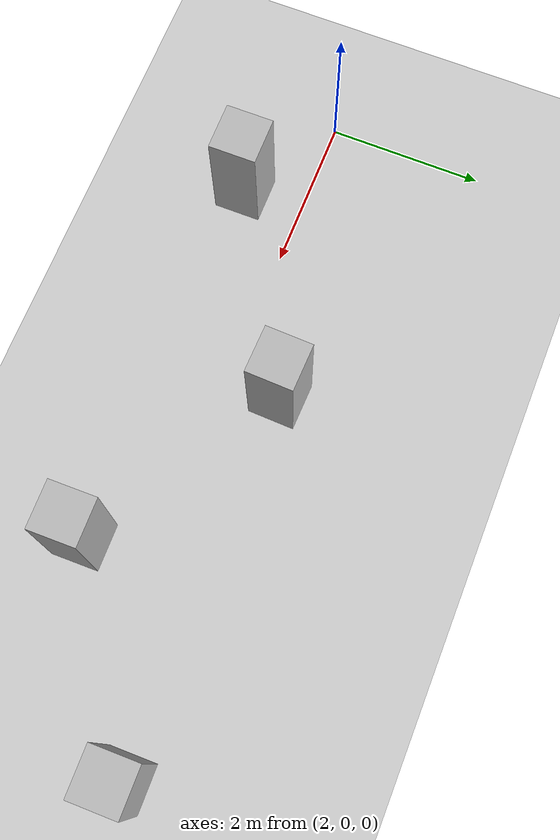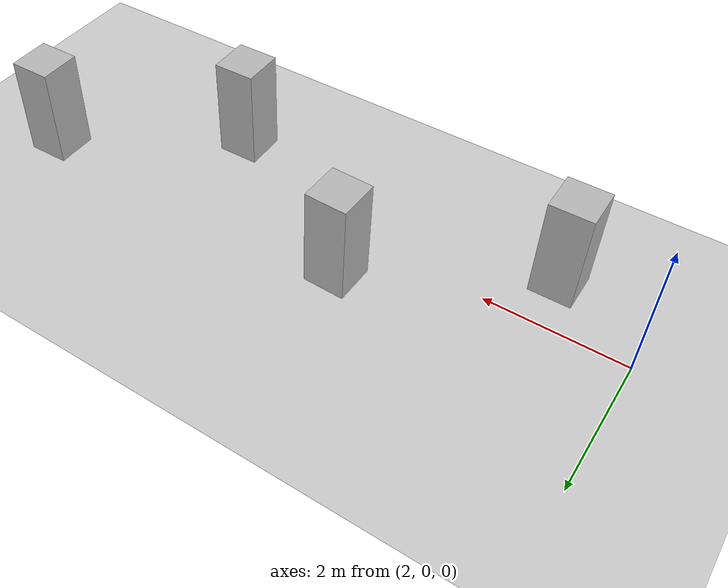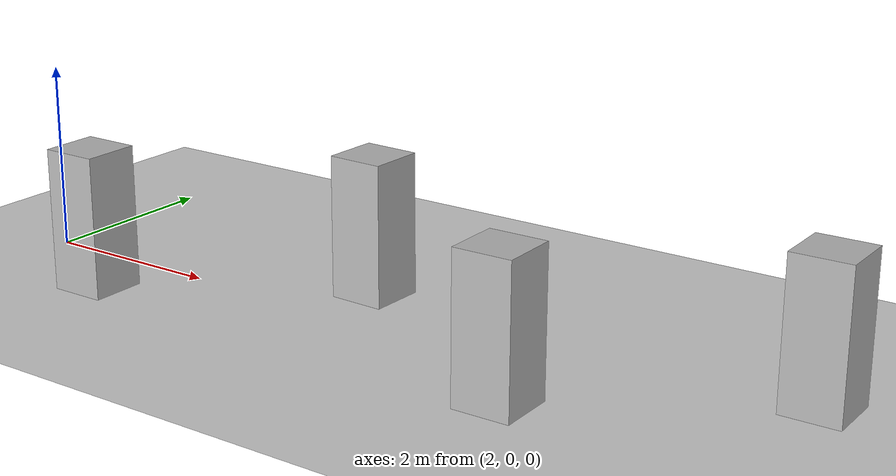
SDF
<?xml version="1.0"?>
<sdf version="1.6">
  <world name="v2-04d-static-s4608">
    <gravity>0 0 -9.81</gravity>
    <physics name="v2_deterministic" type="ode">
      <max_step_size>0.002</max_step_size>
      <real_time_update_rate>500</real_time_update_rate>
    </physics>
    <include>
      <uri>model://sun</uri>
    </include>
    <include>
      <uri>model://ground_plane</uri>
    </include>
    <model name="pillar-1">
      <static>true</static>
      <pose>3.291063985 -0.777340728 0.750000000 0 0 0.004972166</pose>
      <link name="link">
        <collision name="collision">
          <geometry>
            <box>
              <size>0.600000 0.600000 1.500000</size>
            </box>
          </geometry>
        </collision>
        <visual name="visual">
          <geometry>
            <box>
              <size>0.600000 0.600000 1.500000</size>
            </box>
          </geometry>
        </visual>
      </link>
    </model>
    <model name="pillar-2">
      <static>true</static>
      <pose>5.775290225 0.705109593 0.750000000 0 0 -0.028382661</pose>
      <link name="link">
        <collision name="collision">
          <geometry>
            <box>
              <size>0.600000 0.600000 1.500000</size>
            </box>
          </geometry>
        </collision>
        <visual name="visual">
          <geometry>
            <box>
              <size>0.600000 0.600000 1.500000</size>
            </box>
          </geometry>
        </visual>
      </link>
    </model>
    <model name="pillar-3">
      <static>true</static>
      <pose>8.293498002 -0.821275139 0.750000000 0 0 0.015845184</pose>
      <link name="link">
        <collision name="collision">
          <geometry>
            <box>
              <size>0.600000 0.600000 1.500000</size>
            </box>
          </geometry>
        </collision>
        <visual name="visual">
          <geometry>
            <box>
              <size>0.600000 0.600000 1.500000</size>
            </box>
          </geometry>
        </visual>
      </link>
    </model>
    <model name="pillar-4">
      <static>true</static>
      <pose>10.651967750 0.733346252 0.750000000 0 0 0.014419531</pose>
      <link name="link">
        <collision name="collision">
          <geometry>
            <box>
              <size>0.600000 0.600000 1.500000</size>
            </box>
          </geometry>
        </collision>
        <visual name="visual">
          <geometry>
            <box>
              <size>0.600000 0.600000 1.500000</size>
            </box>
          </geometry>
        </visual>
      </link>
    </model>
  </world>
</sdf>
